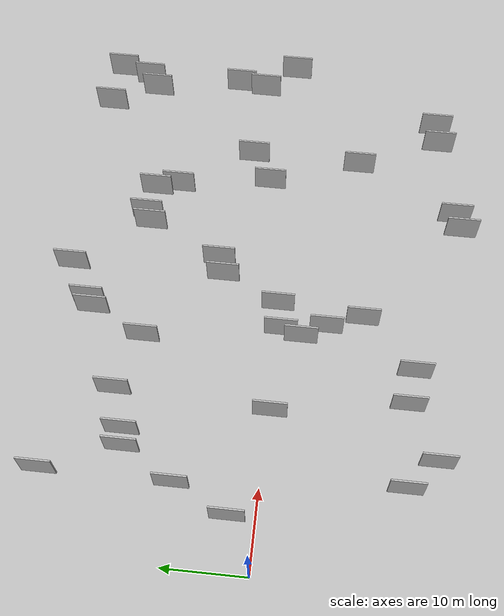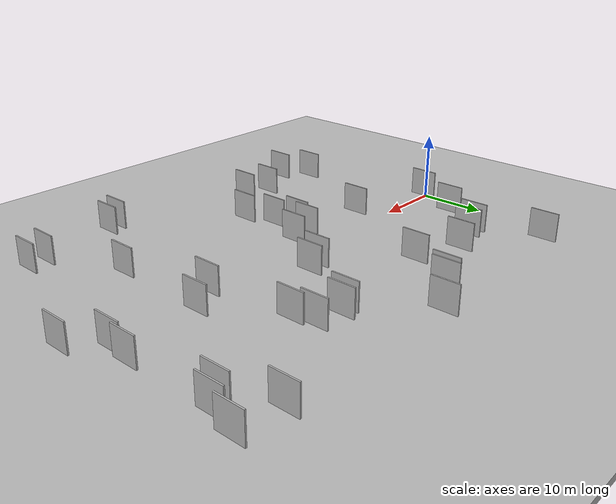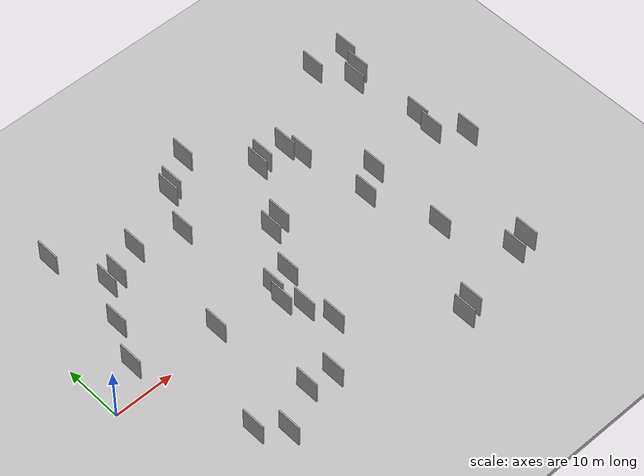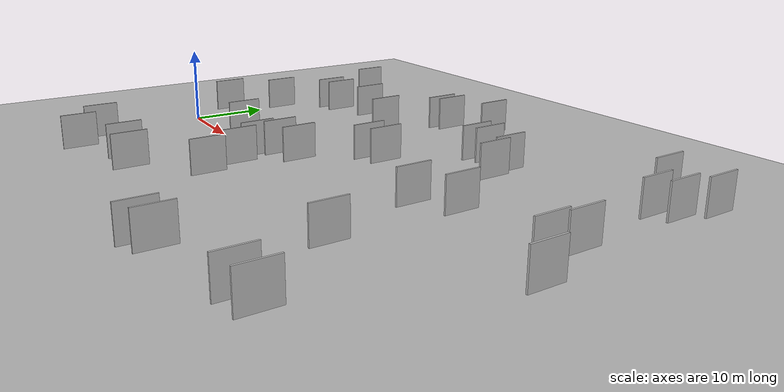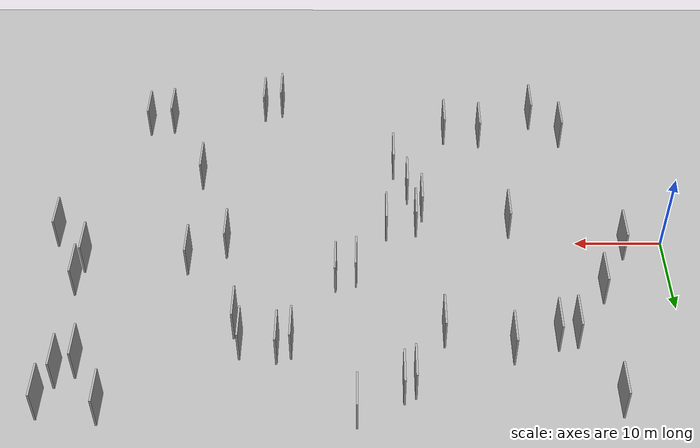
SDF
<?xml version="1.0" encoding="utf-8"?>

<sdf version="1.6">

   <world name="default">

      <gui fullscreen="0">

         <camera name="user_camera">

            <pose>-15 0 4.57585 0 0 0</pose>

            <view_controller>orbit</view_controller>

         </camera>

      </gui>

      <scene>

         <sky>

           <clouds>

             <speed>12</speed>

           </clouds>

         </sky>

         <ambient>0.4 0.4 0.4 1</ambient>

         <background>0.7 0.7 0.7 1</background>

         <shadows>1</shadows>

      </scene>

      <gravity>0 0 -9.8066</gravity>

      <magnetic_field>6e-06 2.3e-05 -4.2e-05</magnetic_field>

      <physics default="0" name="default_physics" type="ode">

         <ode>

            <solver>

               <type>quick</type>

               <iters>10</iters>

               <sor>1.0</sor>

               <use_dynamic_moi_rescaling>0</use_dynamic_moi_rescaling>

            </solver>

            <constraints>

               <cfm>0</cfm>

               <erp>0.2</erp>

               <contact_max_correcting_vel>100</contact_max_correcting_vel>

               <contact_surface_layer>0.001</contact_surface_layer>

            </constraints>

         </ode>

         <max_step_size>0.004</max_step_size>

         <real_time_factor>1</real_time_factor>

         <real_time_update_rate>250</real_time_update_rate>

      </physics>

      <light name="sun" type="directional">

         <cast_shadows>1</cast_shadows>

         <pose>0 0 10 0 0 0</pose>

         <diffuse>0.8 0.8 0.8 1</diffuse>

         <specular>0.2 0.2 0.2 1</specular>

         <attenuation>

            <range>1000</range>

            <constant>0.9</constant>

            <linear>0.01</linear>

            <quadratic>0.001</quadratic>

         </attenuation>

         <direction>-0.5 0.1 -0.9</direction>

      </light>

      <include>

         <name>ground_plane_1</name>

         <uri>model://HANNAS_ground_plane</uri>

         <pose>0 0 0  0 0 0</pose>

      </include>

      <include>

         <name>ground_plane_2</name>

         <uri>model://HANNAS_ground_plane</uri>

         <pose>100 0 0  0 0 0</pose>

      </include>

      <model name="HANNAS_wall_1">

         <static>1</static>

         <pose frame="">54.0828 5.3989 2.5 0.000000 0.000000 1.570796</pose>

         <link name="link">

            <pose frame="">0 0 2.00 0 0 0</pose>

            <collision name="collision">

               <geometry>

                  <box>

                     <size>4.00 0.2 4.00</size>

                  </box>

               </geometry>

               <max_contacts>10</max_contacts>

               <surface>

                  <contact>

                     <ode/>

                  </contact>

                  <bounce/>

                  <friction>

                     <torsional>

                        <ode/>

                     </torsional>

                     <ode/>

                  </friction>

               </surface>

            </collision>

            <visual name="visual">

               <cast_shadows>0</cast_shadows>

               <geometry>

                  <box>

                     <size>4.00 0.2 4.00</size>

                  </box>

               </geometry>

               <material>

                  <script>

                     <uri>model://HANNAS_wall/materials/scripts</uri>

                     <uri>model://HANNAS_wall/materials/textures</uri>

                     <name>vrc/HANNAS_wall</name>

                  </script>

               </material>

            </visual>

            <self_collide>0</self_collide>

            <enable_wind>0</enable_wind>

            <kinematic>0</kinematic>

         </link>

      </model>

      <model name="HANNAS_wall_2">

         <static>1</static>

         <pose frame="">30.4569 23.1039 2.5 0.000000 0.000000 1.570796</pose>

         <link name="link">

            <pose frame="">0 0 2.00 0 0 0</pose>

            <collision name="collision">

               <geometry>

                  <box>

                     <size>4.00 0.2 4.00</size>

                  </box>

               </geometry>

               <max_contacts>10</max_contacts>

               <surface>

                  <contact>

                     <ode/>

                  </contact>

                  <bounce/>

                  <friction>

                     <torsional>

                        <ode/>

                     </torsional>

                     <ode/>

                  </friction>

               </surface>

            </collision>

            <visual name="visual">

               <cast_shadows>0</cast_shadows>

               <geometry>

                  <box>

                     <size>4.00 0.2 4.00</size>

                  </box>

               </geometry>

               <material>

                  <script>

                     <uri>model://HANNAS_wall/materials/scripts</uri>

                     <uri>model://HANNAS_wall/materials/textures</uri>

                     <name>vrc/HANNAS_wall</name>

                  </script>

               </material>

            </visual>

            <self_collide>0</self_collide>

            <enable_wind>0</enable_wind>

            <kinematic>0</kinematic>

         </link>

      </model>

      <model name="HANNAS_wall_3">

         <static>1</static>

         <pose frame="">13.9327 -19.6454 2.5 0.000000 0.000000 1.570796</pose>

         <link name="link">

            <pose frame="">0 0 2.00 0 0 0</pose>

            <collision name="collision">

               <geometry>

                  <box>

                     <size>4.00 0.2 4.00</size>

                  </box>

               </geometry>

               <max_contacts>10</max_contacts>

               <surface>

                  <contact>

                     <ode/>

                  </contact>

                  <bounce/>

                  <friction>

                     <torsional>

                        <ode/>

                     </torsional>

                     <ode/>

                  </friction>

               </surface>

            </collision>

            <visual name="visual">

               <cast_shadows>0</cast_shadows>

               <geometry>

                  <box>

                     <size>4.00 0.2 4.00</size>

                  </box>

               </geometry>

               <material>

                  <script>

                     <uri>model://HANNAS_wall/materials/scripts</uri>

                     <uri>model://HANNAS_wall/materials/textures</uri>

                     <name>vrc/HANNAS_wall</name>

                  </script>

               </material>

            </visual>

            <self_collide>0</self_collide>

            <enable_wind>0</enable_wind>

            <kinematic>0</kinematic>

         </link>

      </model>

      <model name="HANNAS_wall_4">

         <static>1</static>

         <pose frame="">43.5822 17.9578 2.5 0.000000 0.000000 1.570796</pose>

         <link name="link">

            <pose frame="">0 0 2.00 0 0 0</pose>

            <collision name="collision">

               <geometry>

                  <box>

                     <size>4.00 0.2 4.00</size>

                  </box>

               </geometry>

               <max_contacts>10</max_contacts>

               <surface>

                  <contact>

                     <ode/>

                  </contact>

                  <bounce/>

                  <friction>

                     <torsional>

                        <ode/>

                     </torsional>

                     <ode/>

                  </friction>

               </surface>

            </collision>

            <visual name="visual">

               <cast_shadows>0</cast_shadows>

               <geometry>

                  <box>

                     <size>4.00 0.2 4.00</size>

                  </box>

               </geometry>

               <material>

                  <script>

                     <uri>model://HANNAS_wall/materials/scripts</uri>

                     <uri>model://HANNAS_wall/materials/textures</uri>

                     <name>vrc/HANNAS_wall</name>

                  </script>

               </material>

            </visual>

            <self_collide>0</self_collide>

            <enable_wind>0</enable_wind>

            <kinematic>0</kinematic>

         </link>

      </model>

      <model name="HANNAS_wall_5">

         <static>1</static>

         <pose frame="">28.6368 -0.5969 2.5 0.000000 0.000000 1.570796</pose>

         <link name="link">

            <pose frame="">0 0 2.00 0 0 0</pose>

            <collision name="collision">

               <geometry>

                  <box>

                     <size>4.00 0.2 4.00</size>

                  </box>

               </geometry>

               <max_contacts>10</max_contacts>

               <surface>

                  <contact>

                     <ode/>

                  </contact>

                  <bounce/>

                  <friction>

                     <torsional>

                        <ode/>

                     </torsional>

                     <ode/>

                  </friction>

               </surface>

            </collision>

            <visual name="visual">

               <cast_shadows>0</cast_shadows>

               <geometry>

                  <box>

                     <size>4.00 0.2 4.00</size>

                  </box>

               </geometry>

               <material>

                  <script>

                     <uri>model://HANNAS_wall/materials/scripts</uri>

                     <uri>model://HANNAS_wall/materials/textures</uri>

                     <name>vrc/HANNAS_wall</name>

                  </script>

               </material>

            </visual>

            <self_collide>0</self_collide>

            <enable_wind>0</enable_wind>

            <kinematic>0</kinematic>

         </link>

      </model>

      <model name="HANNAS_wall_6">

         <static>1</static>

         <pose frame="">20.4660 -16.1549 2.5 0.000000 0.000000 1.570796</pose>

         <link name="link">

            <pose frame="">0 0 2.00 0 0 0</pose>

            <collision name="collision">

               <geometry>

                  <box>

                     <size>4.00 0.2 4.00</size>

                  </box>

               </geometry>

               <max_contacts>10</max_contacts>

               <surface>

                  <contact>

                     <ode/>

                  </contact>

                  <bounce/>

                  <friction>

                     <torsional>

                        <ode/>

                     </torsional>

                     <ode/>

                  </friction>

               </surface>

            </collision>

            <visual name="visual">

               <cast_shadows>0</cast_shadows>

               <geometry>

                  <box>

                     <size>4.00 0.2 4.00</size>

                  </box>

               </geometry>

               <material>

                  <script>

                     <uri>model://HANNAS_wall/materials/scripts</uri>

                     <uri>model://HANNAS_wall/materials/textures</uri>

                     <name>vrc/HANNAS_wall</name>

                  </script>

               </material>

            </visual>

            <self_collide>0</self_collide>

            <enable_wind>0</enable_wind>

            <kinematic>0</kinematic>

         </link>

      </model>

      <model name="HANNAS_wall_7">

         <static>1</static>

         <pose frame="">42.1007 17.3081 2.5 0.000000 0.000000 1.570796</pose>

         <link name="link">

            <pose frame="">0 0 2.00 0 0 0</pose>

            <collision name="collision">

               <geometry>

                  <box>

                     <size>4.00 0.2 4.00</size>

                  </box>

               </geometry>

               <max_contacts>10</max_contacts>

               <surface>

                  <contact>

                     <ode/>

                  </contact>

                  <bounce/>

                  <friction>

                     <torsional>

                        <ode/>

                     </torsional>

                     <ode/>

                  </friction>

               </surface>

            </collision>

            <visual name="visual">

               <cast_shadows>0</cast_shadows>

               <geometry>

                  <box>

                     <size>4.00 0.2 4.00</size>

                  </box>

               </geometry>

               <material>

                  <script>

                     <uri>model://HANNAS_wall/materials/scripts</uri>

                     <uri>model://HANNAS_wall/materials/textures</uri>

                     <name>vrc/HANNAS_wall</name>

                  </script>

               </material>

            </visual>

            <self_collide>0</self_collide>

            <enable_wind>0</enable_wind>

            <kinematic>0</kinematic>

         </link>

      </model>

      <model name="HANNAS_wall_8">

         <static>1</static>

         <pose frame="">32.0165 0.0656 2.5 0.000000 0.000000 1.570796</pose>

         <link name="link">

            <pose frame="">0 0 2.00 0 0 0</pose>

            <collision name="collision">

               <geometry>

                  <box>

                     <size>4.00 0.2 4.00</size>

                  </box>

               </geometry>

               <max_contacts>10</max_contacts>

               <surface>

                  <contact>

                     <ode/>

                  </contact>

                  <bounce/>

                  <friction>

                     <torsional>

                        <ode/>

                     </torsional>

                     <ode/>

                  </friction>

               </surface>

            </collision>

            <visual name="visual">

               <cast_shadows>0</cast_shadows>

               <geometry>

                  <box>

                     <size>4.00 0.2 4.00</size>

                  </box>

               </geometry>

               <material>

                  <script>

                     <uri>model://HANNAS_wall/materials/scripts</uri>

                     <uri>model://HANNAS_wall/materials/textures</uri>

                     <name>vrc/HANNAS_wall</name>

                  </script>

               </material>

            </visual>

            <self_collide>0</self_collide>

            <enable_wind>0</enable_wind>

            <kinematic>0</kinematic>

         </link>

      </model>

      <model name="HANNAS_wall_9">

         <static>1</static>

         <pose frame="">48.2413 14.5677 2.5 0.000000 0.000000 1.570796</pose>

         <link name="link">

            <pose frame="">0 0 2.00 0 0 0</pose>

            <collision name="collision">

               <geometry>

                  <box>

                     <size>4.00 0.2 4.00</size>

                  </box>

               </geometry>

               <max_contacts>10</max_contacts>

               <surface>

                  <contact>

                     <ode/>

                  </contact>

                  <bounce/>

                  <friction>

                     <torsional>

                        <ode/>

                     </torsional>

                     <ode/>

                  </friction>

               </surface>

            </collision>

            <visual name="visual">

               <cast_shadows>0</cast_shadows>

               <geometry>

                  <box>

                     <size>4.00 0.2 4.00</size>

                  </box>

               </geometry>

               <material>

                  <script>

                     <uri>model://HANNAS_wall/materials/scripts</uri>

                     <uri>model://HANNAS_wall/materials/textures</uri>

                     <name>vrc/HANNAS_wall</name>

                  </script>

               </material>

            </visual>

            <self_collide>0</self_collide>

            <enable_wind>0</enable_wind>

            <kinematic>0</kinematic>

         </link>

      </model>

      <model name="HANNAS_wall_10">

         <static>1</static>

         <pose frame="">37.6626 7.9713 2.5 0.000000 0.000000 1.570796</pose>

         <link name="link">

            <pose frame="">0 0 2.00 0 0 0</pose>

            <collision name="collision">

               <geometry>

                  <box>

                     <size>4.00 0.2 4.00</size>

                  </box>

               </geometry>

               <max_contacts>10</max_contacts>

               <surface>

                  <contact>

                     <ode/>

                  </contact>

                  <bounce/>

                  <friction>

                     <torsional>

                        <ode/>

                     </torsional>

                     <ode/>

                  </friction>

               </surface>

            </collision>

            <visual name="visual">

               <cast_shadows>0</cast_shadows>

               <geometry>

                  <box>

                     <size>4.00 0.2 4.00</size>

                  </box>

               </geometry>

               <material>

                  <script>

                     <uri>model://HANNAS_wall/materials/scripts</uri>

                     <uri>model://HANNAS_wall/materials/textures</uri>

                     <name>vrc/HANNAS_wall</name>

                  </script>

               </material>

            </visual>

            <self_collide>0</self_collide>

            <enable_wind>0</enable_wind>

            <kinematic>0</kinematic>

         </link>

      </model>

      <model name="HANNAS_wall_11">

         <static>1</static>

         <pose frame="">10.5309 -16.2669 2.5 0.000000 0.000000 1.570796</pose>

         <link name="link">

            <pose frame="">0 0 2.00 0 0 0</pose>

            <collision name="collision">

               <geometry>

                  <box>

                     <size>4.00 0.2 4.00</size>

                  </box>

               </geometry>

               <max_contacts>10</max_contacts>

               <surface>

                  <contact>

                     <ode/>

                  </contact>

                  <bounce/>

                  <friction>

                     <torsional>

                        <ode/>

                     </torsional>

                     <ode/>

                  </friction>

               </surface>

            </collision>

            <visual name="visual">

               <cast_shadows>0</cast_shadows>

               <geometry>

                  <box>

                     <size>4.00 0.2 4.00</size>

                  </box>

               </geometry>

               <material>

                  <script>

                     <uri>model://HANNAS_wall/materials/scripts</uri>

                     <uri>model://HANNAS_wall/materials/textures</uri>

                     <name>vrc/HANNAS_wall</name>

                  </script>

               </material>

            </visual>

            <self_collide>0</self_collide>

            <enable_wind>0</enable_wind>

            <kinematic>0</kinematic>

         </link>

      </model>

      <model name="HANNAS_wall_12">

         <static>1</static>

         <pose frame="">35.4236 7.2011 2.5 0.000000 0.000000 1.570796</pose>

         <link name="link">

            <pose frame="">0 0 2.00 0 0 0</pose>

            <collision name="collision">

               <geometry>

                  <box>

                     <size>4.00 0.2 4.00</size>

                  </box>

               </geometry>

               <max_contacts>10</max_contacts>

               <surface>

                  <contact>

                     <ode/>

                  </contact>

                  <bounce/>

                  <friction>

                     <torsional>

                        <ode/>

                     </torsional>

                     <ode/>

                  </friction>

               </surface>

            </collision>

            <visual name="visual">

               <cast_shadows>0</cast_shadows>

               <geometry>

                  <box>

                     <size>4.00 0.2 4.00</size>

                  </box>

               </geometry>

               <material>

                  <script>

                     <uri>model://HANNAS_wall/materials/scripts</uri>

                     <uri>model://HANNAS_wall/materials/textures</uri>

                     <name>vrc/HANNAS_wall</name>

                  </script>

               </material>

            </visual>

            <self_collide>0</self_collide>

            <enable_wind>0</enable_wind>

            <kinematic>0</kinematic>

         </link>

      </model>

      <model name="HANNAS_wall_13">

         <static>1</static>

         <pose frame="">61.1468 -18.3724 2.5 0.000000 0.000000 1.570796</pose>

         <link name="link">

            <pose frame="">0 0 2.00 0 0 0</pose>

            <collision name="collision">

               <geometry>

                  <box>

                     <size>4.00 0.2 4.00</size>

                  </box>

               </geometry>

               <max_contacts>10</max_contacts>

               <surface>

                  <contact>

                     <ode/>

                  </contact>

                  <bounce/>

                  <friction>

                     <torsional>

                        <ode/>

                     </torsional>

                     <ode/>

                  </friction>

               </surface>

            </collision>

            <visual name="visual">

               <cast_shadows>0</cast_shadows>

               <geometry>

                  <box>

                     <size>4.00 0.2 4.00</size>

                  </box>

               </geometry>

               <material>

                  <script>

                     <uri>model://HANNAS_wall/materials/scripts</uri>

                     <uri>model://HANNAS_wall/materials/textures</uri>

                     <name>vrc/HANNAS_wall</name>

                  </script>

               </material>

            </visual>

            <self_collide>0</self_collide>

            <enable_wind>0</enable_wind>

            <kinematic>0</kinematic>

         </link>

      </model>

      <model name="HANNAS_wall_14">

         <static>1</static>

         <pose frame="">49.9718 2.8402 2.5 0.000000 0.000000 1.570796</pose>

         <link name="link">

            <pose frame="">0 0 2.00 0 0 0</pose>

            <collision name="collision">

               <geometry>

                  <box>

                     <size>4.00 0.2 4.00</size>

                  </box>

               </geometry>

               <max_contacts>10</max_contacts>

               <surface>

                  <contact>

                     <ode/>

                  </contact>

                  <bounce/>

                  <friction>

                     <torsional>

                        <ode/>

                     </torsional>

                     <ode/>

                  </friction>

               </surface>

            </collision>

            <visual name="visual">

               <cast_shadows>0</cast_shadows>

               <geometry>

                  <box>

                     <size>4.00 0.2 4.00</size>

                  </box>

               </geometry>

               <material>

                  <script>

                     <uri>model://HANNAS_wall/materials/scripts</uri>

                     <uri>model://HANNAS_wall/materials/textures</uri>

                     <name>vrc/HANNAS_wall</name>

                  </script>

               </material>

            </visual>

            <self_collide>0</self_collide>

            <enable_wind>0</enable_wind>

            <kinematic>0</kinematic>

         </link>

      </model>

      <model name="HANNAS_wall_15">

         <static>1</static>

         <pose frame="">65.5464 5.0422 2.5 0.000000 0.000000 1.570796</pose>

         <link name="link">

            <pose frame="">0 0 2.00 0 0 0</pose>

            <collision name="collision">

               <geometry>

                  <box>

                     <size>4.00 0.2 4.00</size>

                  </box>

               </geometry>

               <max_contacts>10</max_contacts>

               <surface>

                  <contact>

                     <ode/>

                  </contact>

                  <bounce/>

                  <friction>

                     <torsional>

                        <ode/>

                     </torsional>

                     <ode/>

                  </friction>

               </surface>

            </collision>

            <visual name="visual">

               <cast_shadows>0</cast_shadows>

               <geometry>

                  <box>

                     <size>4.00 0.2 4.00</size>

                  </box>

               </geometry>

               <material>

                  <script>

                     <uri>model://HANNAS_wall/materials/scripts</uri>

                     <uri>model://HANNAS_wall/materials/textures</uri>

                     <name>vrc/HANNAS_wall</name>

                  </script>

               </material>

            </visual>

            <self_collide>0</self_collide>

            <enable_wind>0</enable_wind>

            <kinematic>0</kinematic>

         </link>

      </model>

      <model name="HANNAS_wall_16">

         <static>1</static>

         <pose frame="">65.9813 21.1473 2.5 0.000000 0.000000 1.570796</pose>

         <link name="link">

            <pose frame="">0 0 2.00 0 0 0</pose>

            <collision name="collision">

               <geometry>

                  <box>

                     <size>4.00 0.2 4.00</size>

                  </box>

               </geometry>

               <max_contacts>10</max_contacts>

               <surface>

                  <contact>

                     <ode/>

                  </contact>

                  <bounce/>

                  <friction>

                     <torsional>

                        <ode/>

                     </torsional>

                     <ode/>

                  </friction>

               </surface>

            </collision>

            <visual name="visual">

               <cast_shadows>0</cast_shadows>

               <geometry>

                  <box>

                     <size>4.00 0.2 4.00</size>

                  </box>

               </geometry>

               <material>

                  <script>

                     <uri>model://HANNAS_wall/materials/scripts</uri>

                     <uri>model://HANNAS_wall/materials/textures</uri>

                     <name>vrc/HANNAS_wall</name>

                  </script>

               </material>

            </visual>

            <self_collide>0</self_collide>

            <enable_wind>0</enable_wind>

            <kinematic>0</kinematic>

         </link>

      </model>

      <model name="HANNAS_wall_17">

         <static>1</static>

         <pose frame="">27.8868 -3.0849 2.5 0.000000 0.000000 1.570796</pose>

         <link name="link">

            <pose frame="">0 0 2.00 0 0 0</pose>

            <collision name="collision">

               <geometry>

                  <box>

                     <size>4.00 0.2 4.00</size>

                  </box>

               </geometry>

               <max_contacts>10</max_contacts>

               <surface>

                  <contact>

                     <ode/>

                  </contact>

                  <bounce/>

                  <friction>

                     <torsional>

                        <ode/>

                     </torsional>

                     <ode/>

                  </friction>

               </surface>

            </collision>

            <visual name="visual">

               <cast_shadows>0</cast_shadows>

               <geometry>

                  <box>

                     <size>4.00 0.2 4.00</size>

                  </box>

               </geometry>

               <material>

                  <script>

                     <uri>model://HANNAS_wall/materials/scripts</uri>

                     <uri>model://HANNAS_wall/materials/textures</uri>

                     <name>vrc/HANNAS_wall</name>

                  </script>

               </material>

            </visual>

            <self_collide>0</self_collide>

            <enable_wind>0</enable_wind>

            <kinematic>0</kinematic>

         </link>

      </model>

      <model name="HANNAS_wall_18">

         <static>1</static>

         <pose frame="">18.0808 -0.3892 2.5 0.000000 0.000000 1.570796</pose>

         <link name="link">

            <pose frame="">0 0 2.00 0 0 0</pose>

            <collision name="collision">

               <geometry>

                  <box>

                     <size>4.00 0.2 4.00</size>

                  </box>

               </geometry>

               <max_contacts>10</max_contacts>

               <surface>

                  <contact>

                     <ode/>

                  </contact>

                  <bounce/>

                  <friction>

                     <torsional>

                        <ode/>

                     </torsional>

                     <ode/>

                  </friction>

               </surface>

            </collision>

            <visual name="visual">

               <cast_shadows>0</cast_shadows>

               <geometry>

                  <box>

                     <size>4.00 0.2 4.00</size>

                  </box>

               </geometry>

               <material>

                  <script>

                     <uri>model://HANNAS_wall/materials/scripts</uri>

                     <uri>model://HANNAS_wall/materials/textures</uri>

                     <name>vrc/HANNAS_wall</name>

                  </script>

               </material>

            </visual>

            <self_collide>0</self_collide>

            <enable_wind>0</enable_wind>

            <kinematic>0</kinematic>

         </link>

      </model>

      <model name="HANNAS_wall_19">

         <static>1</static>

         <pose frame="">58.3128 -18.8393 2.5 0.000000 0.000000 1.570796</pose>

         <link name="link">

            <pose frame="">0 0 2.00 0 0 0</pose>

            <collision name="collision">

               <geometry>

                  <box>

                     <size>4.00 0.2 4.00</size>

                  </box>

               </geometry>

               <max_contacts>10</max_contacts>

               <surface>

                  <contact>

                     <ode/>

                  </contact>

                  <bounce/>

                  <friction>

                     <torsional>

                        <ode/>

                     </torsional>

                     <ode/>

                  </friction>

               </surface>

            </collision>

            <visual name="visual">

               <cast_shadows>0</cast_shadows>

               <geometry>

                  <box>

                     <size>4.00 0.2 4.00</size>

                  </box>

               </geometry>

               <material>

                  <script>

                     <uri>model://HANNAS_wall/materials/scripts</uri>

                     <uri>model://HANNAS_wall/materials/textures</uri>

                     <name>vrc/HANNAS_wall</name>

                  </script>

               </material>

            </visual>

            <self_collide>0</self_collide>

            <enable_wind>0</enable_wind>

            <kinematic>0</kinematic>

         </link>

      </model>

      <model name="HANNAS_wall_20">

         <static>1</static>

         <pose frame="">64.0733 19.8407 2.5 0.000000 0.000000 1.570796</pose>

         <link name="link">

            <pose frame="">0 0 2.00 0 0 0</pose>

            <collision name="collision">

               <geometry>

                  <box>

                     <size>4.00 0.2 4.00</size>

                  </box>

               </geometry>

               <max_contacts>10</max_contacts>

               <surface>

                  <contact>

                     <ode/>

                  </contact>

                  <bounce/>

                  <friction>

                     <torsional>

                        <ode/>

                     </torsional>

                     <ode/>

                  </friction>

               </surface>

            </collision>

            <visual name="visual">

               <cast_shadows>0</cast_shadows>

               <geometry>

                  <box>

                     <size>4.00 0.2 4.00</size>

                  </box>

               </geometry>

               <material>

                  <script>

                     <uri>model://HANNAS_wall/materials/scripts</uri>

                     <uri>model://HANNAS_wall/materials/textures</uri>

                     <name>vrc/HANNAS_wall</name>

                  </script>

               </material>

            </visual>

            <self_collide>0</self_collide>

            <enable_wind>0</enable_wind>

            <kinematic>0</kinematic>

         </link>

      </model>

      <model name="HANNAS_wall_21">

         <static>1</static>

         <pose frame="">8.6399 24.6248 2.5 0.000000 0.000000 1.570796</pose>

         <link name="link">

            <pose frame="">0 0 2.00 0 0 0</pose>

            <collision name="collision">

               <geometry>

                  <box>

                     <size>4.00 0.2 4.00</size>

                  </box>

               </geometry>

               <max_contacts>10</max_contacts>

               <surface>

                  <contact>

                     <ode/>

                  </contact>

                  <bounce/>

                  <friction>

                     <torsional>

                        <ode/>

                     </torsional>

                     <ode/>

                  </friction>

               </surface>

            </collision>

            <visual name="visual">

               <cast_shadows>0</cast_shadows>

               <geometry>

                  <box>

                     <size>4.00 0.2 4.00</size>

                  </box>

               </geometry>

               <material>

                  <script>

                     <uri>model://HANNAS_wall/materials/scripts</uri>

                     <uri>model://HANNAS_wall/materials/textures</uri>

                     <name>vrc/HANNAS_wall</name>

                  </script>

               </material>

            </visual>

            <self_collide>0</self_collide>

            <enable_wind>0</enable_wind>

            <kinematic>0</kinematic>

         </link>

      </model>

      <model name="HANNAS_wall_22">

         <static>1</static>

         <pose frame="">67.1459 25.0001 2.5 0.000000 0.000000 1.570796</pose>

         <link name="link">

            <pose frame="">0 0 2.00 0 0 0</pose>

            <collision name="collision">

               <geometry>

                  <box>

                     <size>4.00 0.2 4.00</size>

                  </box>

               </geometry>

               <max_contacts>10</max_contacts>

               <surface>

                  <contact>

                     <ode/>

                  </contact>

                  <bounce/>

                  <friction>

                     <torsional>

                        <ode/>

                     </torsional>

                     <ode/>

                  </friction>

               </surface>

            </collision>

            <visual name="visual">

               <cast_shadows>0</cast_shadows>

               <geometry>

                  <box>

                     <size>4.00 0.2 4.00</size>

                  </box>

               </geometry>

               <material>

                  <script>

                     <uri>model://HANNAS_wall/materials/scripts</uri>

                     <uri>model://HANNAS_wall/materials/textures</uri>

                     <name>vrc/HANNAS_wall</name>

                  </script>

               </material>

            </visual>

            <self_collide>0</self_collide>

            <enable_wind>0</enable_wind>

            <kinematic>0</kinematic>

         </link>

      </model>

      <model name="HANNAS_wall_23">

         <static>1</static>

         <pose frame="">24.7482 -16.7943 2.5 0.000000 0.000000 1.570796</pose>

         <link name="link">

            <pose frame="">0 0 2.00 0 0 0</pose>

            <collision name="collision">

               <geometry>

                  <box>

                     <size>4.00 0.2 4.00</size>

                  </box>

               </geometry>

               <max_contacts>10</max_contacts>

               <surface>

                  <contact>

                     <ode/>

                  </contact>

                  <bounce/>

                  <friction>

                     <torsional>

                        <ode/>

                     </torsional>

                     <ode/>

                  </friction>

               </surface>

            </collision>

            <visual name="visual">

               <cast_shadows>0</cast_shadows>

               <geometry>

                  <box>

                     <size>4.00 0.2 4.00</size>

                  </box>

               </geometry>

               <material>

                  <script>

                     <uri>model://HANNAS_wall/materials/scripts</uri>

                     <uri>model://HANNAS_wall/materials/textures</uri>

                     <name>vrc/HANNAS_wall</name>

                  </script>

               </material>

            </visual>

            <self_collide>0</self_collide>

            <enable_wind>0</enable_wind>

            <kinematic>0</kinematic>

         </link>

      </model>

      <model name="HANNAS_wall_24">

         <static>1</static>

         <pose frame="">26.0716 15.7561 2.5 0.000000 0.000000 1.570796</pose>

         <link name="link">

            <pose frame="">0 0 2.00 0 0 0</pose>

            <collision name="collision">

               <geometry>

                  <box>

                     <size>4.00 0.2 4.00</size>

                  </box>

               </geometry>

               <max_contacts>10</max_contacts>

               <surface>

                  <contact>

                     <ode/>

                  </contact>

                  <bounce/>

                  <friction>

                     <torsional>

                        <ode/>

                     </torsional>

                     <ode/>

                  </friction>

               </surface>

            </collision>

            <visual name="visual">

               <cast_shadows>0</cast_shadows>

               <geometry>

                  <box>

                     <size>4.00 0.2 4.00</size>

                  </box>

               </geometry>

               <material>

                  <script>

                     <uri>model://HANNAS_wall/materials/scripts</uri>

                     <uri>model://HANNAS_wall/materials/textures</uri>

                     <name>vrc/HANNAS_wall</name>

                  </script>

               </material>

            </visual>

            <self_collide>0</self_collide>

            <enable_wind>0</enable_wind>

            <kinematic>0</kinematic>

         </link>

      </model>

      <model name="HANNAS_wall_25">

         <static>1</static>

         <pose frame="">60.9790 25.6823 2.5 0.000000 0.000000 1.570796</pose>

         <link name="link">

            <pose frame="">0 0 2.00 0 0 0</pose>

            <collision name="collision">

               <geometry>

                  <box>

                     <size>4.00 0.2 4.00</size>

                  </box>

               </geometry>

               <max_contacts>10</max_contacts>

               <surface>

                  <contact>

                     <ode/>

                  </contact>

                  <bounce/>

                  <friction>

                     <torsional>

                        <ode/>

                     </torsional>

                     <ode/>

                  </friction>

               </surface>

            </collision>

            <visual name="visual">

               <cast_shadows>0</cast_shadows>

               <geometry>

                  <box>

                     <size>4.00 0.2 4.00</size>

                  </box>

               </geometry>

               <material>

                  <script>

                     <uri>model://HANNAS_wall/materials/scripts</uri>

                     <uri>model://HANNAS_wall/materials/textures</uri>

                     <name>vrc/HANNAS_wall</name>

                  </script>

               </material>

            </visual>

            <self_collide>0</self_collide>

            <enable_wind>0</enable_wind>

            <kinematic>0</kinematic>

         </link>

      </model>

      <model name="HANNAS_wall_26">

         <static>1</static>

         <pose frame="">18.9605 17.9621 2.5 0.000000 0.000000 1.570796</pose>

         <link name="link">

            <pose frame="">0 0 2.00 0 0 0</pose>

            <collision name="collision">

               <geometry>

                  <box>

                     <size>4.00 0.2 4.00</size>

                  </box>

               </geometry>

               <max_contacts>10</max_contacts>

               <surface>

                  <contact>

                     <ode/>

                  </contact>

                  <bounce/>

                  <friction>

                     <torsional>

                        <ode/>

                     </torsional>

                     <ode/>

                  </friction>

               </surface>

            </collision>

            <visual name="visual">

               <cast_shadows>0</cast_shadows>

               <geometry>

                  <box>

                     <size>4.00 0.2 4.00</size>

                  </box>

               </geometry>

               <material>

                  <script>

                     <uri>model://HANNAS_wall/materials/scripts</uri>

                     <uri>model://HANNAS_wall/materials/textures</uri>

                     <name>vrc/HANNAS_wall</name>

                  </script>

               </material>

            </visual>

            <self_collide>0</self_collide>

            <enable_wind>0</enable_wind>

            <kinematic>0</kinematic>

         </link>

      </model>

      <model name="HANNAS_wall_27">

         <static>1</static>

         <pose frame="">53.7498 -8.5276 2.5 0.000000 0.000000 1.570796</pose>

         <link name="link">

            <pose frame="">0 0 2.00 0 0 0</pose>

            <collision name="collision">

               <geometry>

                  <box>

                     <size>4.00 0.2 4.00</size>

                  </box>

               </geometry>

               <max_contacts>10</max_contacts>

               <surface>

                  <contact>

                     <ode/>

                  </contact>

                  <bounce/>

                  <friction>

                     <torsional>

                        <ode/>

                     </torsional>

                     <ode/>

                  </friction>

               </surface>

            </collision>

            <visual name="visual">

               <cast_shadows>0</cast_shadows>

               <geometry>

                  <box>

                     <size>4.00 0.2 4.00</size>

                  </box>

               </geometry>

               <material>

                  <script>

                     <uri>model://HANNAS_wall/materials/scripts</uri>

                     <uri>model://HANNAS_wall/materials/textures</uri>

                     <name>vrc/HANNAS_wall</name>

                  </script>

               </material>

            </visual>

            <self_collide>0</self_collide>

            <enable_wind>0</enable_wind>

            <kinematic>0</kinematic>

         </link>

      </model>

      <model name="HANNAS_wall_28">

         <static>1</static>

         <pose frame="">35.1841 26.0109 2.5 0.000000 0.000000 1.570796</pose>

         <link name="link">

            <pose frame="">0 0 2.00 0 0 0</pose>

            <collision name="collision">

               <geometry>

                  <box>

                     <size>4.00 0.2 4.00</size>

                  </box>

               </geometry>

               <max_contacts>10</max_contacts>

               <surface>

                  <contact>

                     <ode/>

                  </contact>

                  <bounce/>

                  <friction>

                     <torsional>

                        <ode/>

                     </torsional>

                     <ode/>

                  </friction>

               </surface>

            </collision>

            <visual name="visual">

               <cast_shadows>0</cast_shadows>

               <geometry>

                  <box>

                     <size>4.00 0.2 4.00</size>

                  </box>

               </geometry>

               <material>

                  <script>

                     <uri>model://HANNAS_wall/materials/scripts</uri>

                     <uri>model://HANNAS_wall/materials/textures</uri>

                     <name>vrc/HANNAS_wall</name>

                  </script>

               </material>

            </visual>

            <self_collide>0</self_collide>

            <enable_wind>0</enable_wind>

            <kinematic>0</kinematic>

         </link>

      </model>

      <model name="HANNAS_wall_29">

         <static>1</static>

         <pose frame="">8.5309 9.6037 2.5 0.000000 0.000000 1.570796</pose>

         <link name="link">

            <pose frame="">0 0 2.00 0 0 0</pose>

            <collision name="collision">

               <geometry>

                  <box>

                     <size>4.00 0.2 4.00</size>

                  </box>

               </geometry>

               <max_contacts>10</max_contacts>

               <surface>

                  <contact>

                     <ode/>

                  </contact>

                  <bounce/>

                  <friction>

                     <torsional>

                        <ode/>

                     </torsional>

                     <ode/>

                  </friction>

               </surface>

            </collision>

            <visual name="visual">

               <cast_shadows>0</cast_shadows>

               <geometry>

                  <box>

                     <size>4.00 0.2 4.00</size>

                  </box>

               </geometry>

               <material>

                  <script>

                     <uri>model://HANNAS_wall/materials/scripts</uri>

                     <uri>model://HANNAS_wall/materials/textures</uri>

                     <name>vrc/HANNAS_wall</name>

                  </script>

               </material>

            </visual>

            <self_collide>0</self_collide>

            <enable_wind>0</enable_wind>

            <kinematic>0</kinematic>

         </link>

      </model>

      <model name="HANNAS_wall_30">

         <static>1</static>

         <pose frame="">29.5149 -6.0094 2.5 0.000000 0.000000 1.570796</pose>

         <link name="link">

            <pose frame="">0 0 2.00 0 0 0</pose>

            <collision name="collision">

               <geometry>

                  <box>

                     <size>4.00 0.2 4.00</size>

                  </box>

               </geometry>

               <max_contacts>10</max_contacts>

               <surface>

                  <contact>

                     <ode/>

                  </contact>

                  <bounce/>

                  <friction>

                     <torsional>

                        <ode/>

                     </torsional>

                     <ode/>

                  </friction>

               </surface>

            </collision>

            <visual name="visual">

               <cast_shadows>0</cast_shadows>

               <geometry>

                  <box>

                     <size>4.00 0.2 4.00</size>

                  </box>

               </geometry>

               <material>

                  <script>

                     <uri>model://HANNAS_wall/materials/scripts</uri>

                     <uri>model://HANNAS_wall/materials/textures</uri>

                     <name>vrc/HANNAS_wall</name>

                  </script>

               </material>

            </visual>

            <self_collide>0</self_collide>

            <enable_wind>0</enable_wind>

            <kinematic>0</kinematic>

         </link>

      </model>

      <model name="HANNAS_wall_31">

         <static>1</static>

         <pose frame="">69.1732 1.0330 2.5 0.000000 0.000000 1.570796</pose>

         <link name="link">

            <pose frame="">0 0 2.00 0 0 0</pose>

            <collision name="collision">

               <geometry>

                  <box>

                     <size>4.00 0.2 4.00</size>

                  </box>

               </geometry>

               <max_contacts>10</max_contacts>

               <surface>

                  <contact>

                     <ode/>

                  </contact>

                  <bounce/>

                  <friction>

                     <torsional>

                        <ode/>

                     </torsional>

                     <ode/>

                  </friction>

               </surface>

            </collision>

            <visual name="visual">

               <cast_shadows>0</cast_shadows>

               <geometry>

                  <box>

                     <size>4.00 0.2 4.00</size>

                  </box>

               </geometry>

               <material>

                  <script>

                     <uri>model://HANNAS_wall/materials/scripts</uri>

                     <uri>model://HANNAS_wall/materials/textures</uri>

                     <name>vrc/HANNAS_wall</name>

                  </script>

               </material>

            </visual>

            <self_collide>0</self_collide>

            <enable_wind>0</enable_wind>

            <kinematic>0</kinematic>

         </link>

      </model>

      <model name="HANNAS_wall_32">

         <static>1</static>

         <pose frame="">47.0578 -21.1461 2.5 0.000000 0.000000 1.570796</pose>

         <link name="link">

            <pose frame="">0 0 2.00 0 0 0</pose>

            <collision name="collision">

               <geometry>

                  <box>

                     <size>4.00 0.2 4.00</size>

                  </box>

               </geometry>

               <max_contacts>10</max_contacts>

               <surface>

                  <contact>

                     <ode/>

                  </contact>

                  <bounce/>

                  <friction>

                     <torsional>

                        <ode/>

                     </torsional>

                     <ode/>

                  </friction>

               </surface>

            </collision>

            <visual name="visual">

               <cast_shadows>0</cast_shadows>

               <geometry>

                  <box>

                     <size>4.00 0.2 4.00</size>

                  </box>

               </geometry>

               <material>

                  <script>

                     <uri>model://HANNAS_wall/materials/scripts</uri>

                     <uri>model://HANNAS_wall/materials/textures</uri>

                     <name>vrc/HANNAS_wall</name>

                  </script>

               </material>

            </visual>

            <self_collide>0</self_collide>

            <enable_wind>0</enable_wind>

            <kinematic>0</kinematic>

         </link>

      </model>

      <model name="HANNAS_wall_33">

         <static>1</static>

         <pose frame="">44.9836 -21.9981 2.5 0.000000 0.000000 1.570796</pose>

         <link name="link">

            <pose frame="">0 0 2.00 0 0 0</pose>

            <collision name="collision">

               <geometry>

                  <box>

                     <size>4.00 0.2 4.00</size>

                  </box>

               </geometry>

               <max_contacts>10</max_contacts>

               <surface>

                  <contact>

                     <ode/>

                  </contact>

                  <bounce/>

                  <friction>

                     <torsional>

                        <ode/>

                     </torsional>

                     <ode/>

                  </friction>

               </surface>

            </collision>

            <visual name="visual">

               <cast_shadows>0</cast_shadows>

               <geometry>

                  <box>

                     <size>4.00 0.2 4.00</size>

                  </box>

               </geometry>

               <material>

                  <script>

                     <uri>model://HANNAS_wall/materials/scripts</uri>

                     <uri>model://HANNAS_wall/materials/textures</uri>

                     <name>vrc/HANNAS_wall</name>

                  </script>

               </material>

            </visual>

            <self_collide>0</self_collide>

            <enable_wind>0</enable_wind>

            <kinematic>0</kinematic>

         </link>

      </model>

      <model name="HANNAS_wall_34">

         <static>1</static>

         <pose frame="">5.4903 3.0068 2.5 0.000000 0.000000 1.570796</pose>

         <link name="link">

            <pose frame="">0 0 2.00 0 0 0</pose>

            <collision name="collision">

               <geometry>

                  <box>

                     <size>4.00 0.2 4.00</size>

                  </box>

               </geometry>

               <max_contacts>10</max_contacts>

               <surface>

                  <contact>

                     <ode/>

                  </contact>

                  <bounce/>

                  <friction>

                     <torsional>

                        <ode/>

                     </torsional>

                     <ode/>

                  </friction>

               </surface>

            </collision>

            <visual name="visual">

               <cast_shadows>0</cast_shadows>

               <geometry>

                  <box>

                     <size>4.00 0.2 4.00</size>

                  </box>

               </geometry>

               <material>

                  <script>

                     <uri>model://HANNAS_wall/materials/scripts</uri>

                     <uri>model://HANNAS_wall/materials/textures</uri>

                     <name>vrc/HANNAS_wall</name>

                  </script>

               </material>

            </visual>

            <self_collide>0</self_collide>

            <enable_wind>0</enable_wind>

            <kinematic>0</kinematic>

         </link>

      </model>

      <model name="HANNAS_wall_35">

         <static>1</static>

         <pose frame="">14.1508 16.1802 2.5 0.000000 0.000000 1.570796</pose>

         <link name="link">

            <pose frame="">0 0 2.00 0 0 0</pose>

            <collision name="collision">

               <geometry>

                  <box>

                     <size>4.00 0.2 4.00</size>

                  </box>

               </geometry>

               <max_contacts>10</max_contacts>

               <surface>

                  <contact>

                     <ode/>

                  </contact>

                  <bounce/>

                  <friction>

                     <torsional>

                        <ode/>

                     </torsional>

                     <ode/>

                  </friction>

               </surface>

            </collision>

            <visual name="visual">

               <cast_shadows>0</cast_shadows>

               <geometry>

                  <box>

                     <size>4.00 0.2 4.00</size>

                  </box>

               </geometry>

               <material>

                  <script>

                     <uri>model://HANNAS_wall/materials/scripts</uri>

                     <uri>model://HANNAS_wall/materials/textures</uri>

                     <name>vrc/HANNAS_wall</name>

                  </script>

               </material>

            </visual>

            <self_collide>0</self_collide>

            <enable_wind>0</enable_wind>

            <kinematic>0</kinematic>

         </link>

      </model>

      <model name="HANNAS_wall_36">

         <static>1</static>

         <pose frame="">12.1034 15.8095 2.5 0.000000 0.000000 1.570796</pose>

         <link name="link">

            <pose frame="">0 0 2.00 0 0 0</pose>

            <collision name="collision">

               <geometry>

                  <box>

                     <size>4.00 0.2 4.00</size>

                  </box>

               </geometry>

               <max_contacts>10</max_contacts>

               <surface>

                  <contact>

                     <ode/>

                  </contact>

                  <bounce/>

                  <friction>

                     <torsional>

                        <ode/>

                     </torsional>

                     <ode/>

                  </friction>

               </surface>

            </collision>

            <visual name="visual">

               <cast_shadows>0</cast_shadows>

               <geometry>

                  <box>

                     <size>4.00 0.2 4.00</size>

                  </box>

               </geometry>

               <material>

                  <script>

                     <uri>model://HANNAS_wall/materials/scripts</uri>

                     <uri>model://HANNAS_wall/materials/textures</uri>

                     <name>vrc/HANNAS_wall</name>

                  </script>

               </material>

            </visual>

            <self_collide>0</self_collide>

            <enable_wind>0</enable_wind>

            <kinematic>0</kinematic>

         </link>

      </model>

      <model name="HANNAS_wall_37">

         <static>1</static>

         <pose frame="">31.0727 -10.3142 2.5 0.000000 0.000000 1.570796</pose>

         <link name="link">

            <pose frame="">0 0 2.00 0 0 0</pose>

            <collision name="collision">

               <geometry>

                  <box>

                     <size>4.00 0.2 4.00</size>

                  </box>

               </geometry>

               <max_contacts>10</max_contacts>

               <surface>

                  <contact>

                     <ode/>

                  </contact>

                  <bounce/>

                  <friction>

                     <torsional>

                        <ode/>

                     </torsional>

                     <ode/>

                  </friction>

               </surface>

            </collision>

            <visual name="visual">

               <cast_shadows>0</cast_shadows>

               <geometry>

                  <box>

                     <size>4.00 0.2 4.00</size>

                  </box>

               </geometry>

               <material>

                  <script>

                     <uri>model://HANNAS_wall/materials/scripts</uri>

                     <uri>model://HANNAS_wall/materials/textures</uri>

                     <name>vrc/HANNAS_wall</name>

                  </script>

               </material>

            </visual>

            <self_collide>0</self_collide>

            <enable_wind>0</enable_wind>

            <kinematic>0</kinematic>

         </link>

      </model>

      <model name="HANNAS_wall_38">

         <static>1</static>

         <pose frame="">29.2602 22.4165 2.5 0.000000 0.000000 1.570796</pose>

         <link name="link">

            <pose frame="">0 0 2.00 0 0 0</pose>

            <collision name="collision">

               <geometry>

                  <box>

                     <size>4.00 0.2 4.00</size>

                  </box>

               </geometry>

               <max_contacts>10</max_contacts>

               <surface>

                  <contact>

                     <ode/>

                  </contact>

                  <bounce/>

                  <friction>

                     <torsional>

                        <ode/>

                     </torsional>

                     <ode/>

                  </friction>

               </surface>

            </collision>

            <visual name="visual">

               <cast_shadows>0</cast_shadows>

               <geometry>

                  <box>

                     <size>4.00 0.2 4.00</size>

                  </box>

               </geometry>

               <material>

                  <script>

                     <uri>model://HANNAS_wall/materials/scripts</uri>

                     <uri>model://HANNAS_wall/materials/textures</uri>

                     <name>vrc/HANNAS_wall</name>

                  </script>

               </material>

            </visual>

            <self_collide>0</self_collide>

            <enable_wind>0</enable_wind>

            <kinematic>0</kinematic>

         </link>

      </model>

      <model name="HANNAS_wall_39">

         <static>1</static>

         <pose frame="">47.4812 17.3907 2.5 0.000000 0.000000 1.570796</pose>

         <link name="link">

            <pose frame="">0 0 2.00 0 0 0</pose>

            <collision name="collision">

               <geometry>

                  <box>

                     <size>4.00 0.2 4.00</size>

                  </box>

               </geometry>

               <max_contacts>10</max_contacts>

               <surface>

                  <contact>

                     <ode/>

                  </contact>

                  <bounce/>

                  <friction>

                     <torsional>

                        <ode/>

                     </torsional>

                     <ode/>

                  </friction>

               </surface>

            </collision>

            <visual name="visual">

               <cast_shadows>0</cast_shadows>

               <geometry>

                  <box>

                     <size>4.00 0.2 4.00</size>

                  </box>

               </geometry>

               <material>

                  <script>

                     <uri>model://HANNAS_wall/materials/scripts</uri>

                     <uri>model://HANNAS_wall/materials/textures</uri>

                     <name>vrc/HANNAS_wall</name>

                  </script>

               </material>

            </visual>

            <self_collide>0</self_collide>

            <enable_wind>0</enable_wind>

            <kinematic>0</kinematic>

         </link>

      </model>

      <model name="HANNAS_wall_40">

         <static>1</static>

         <pose frame="">66.0801 8.4405 2.5 0.000000 0.000000 1.570796</pose>

         <link name="link">

            <pose frame="">0 0 2.00 0 0 0</pose>

            <collision name="collision">

               <geometry>

                  <box>

                     <size>4.00 0.2 4.00</size>

                  </box>

               </geometry>

               <max_contacts>10</max_contacts>

               <surface>

                  <contact>

                     <ode/>

                  </contact>

                  <bounce/>

                  <friction>

                     <torsional>

                        <ode/>

                     </torsional>

                     <ode/>

                  </friction>

               </surface>

            </collision>

            <visual name="visual">

               <cast_shadows>0</cast_shadows>

               <geometry>

                  <box>

                     <size>4.00 0.2 4.00</size>

                  </box>

               </geometry>

               <material>

                  <script>

                     <uri>model://HANNAS_wall/materials/scripts</uri>

                     <uri>model://HANNAS_wall/materials/textures</uri>

                     <name>vrc/HANNAS_wall</name>

                  </script>

               </material>

            </visual>

            <self_collide>0</self_collide>

            <enable_wind>0</enable_wind>

            <kinematic>0</kinematic>

         </link>

      </model>

   </world>

</sdf>
